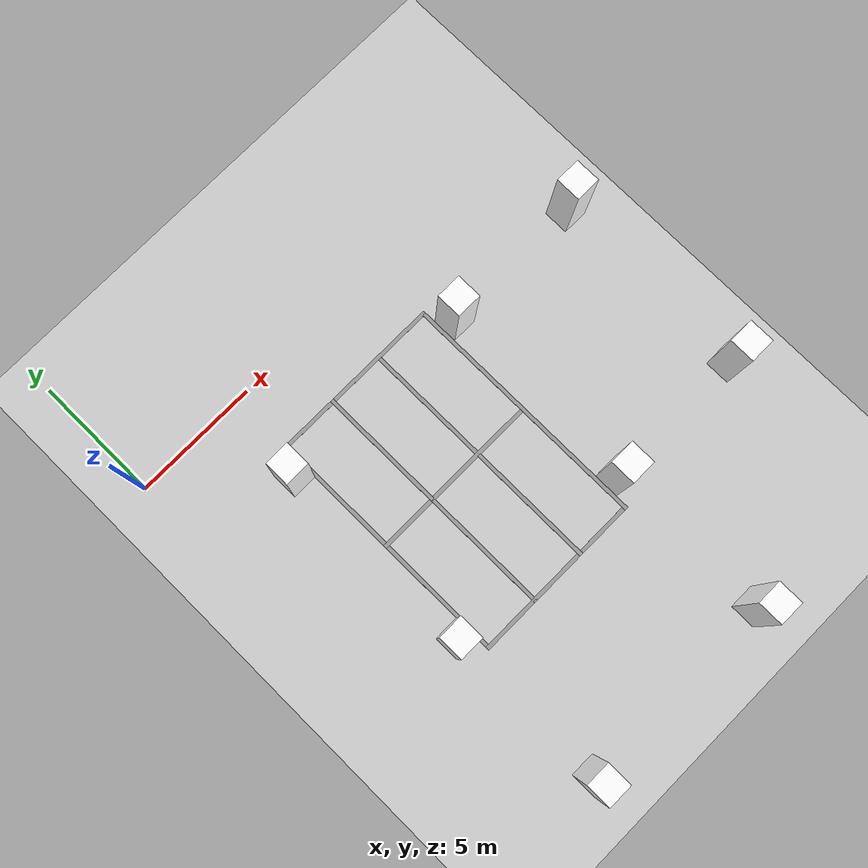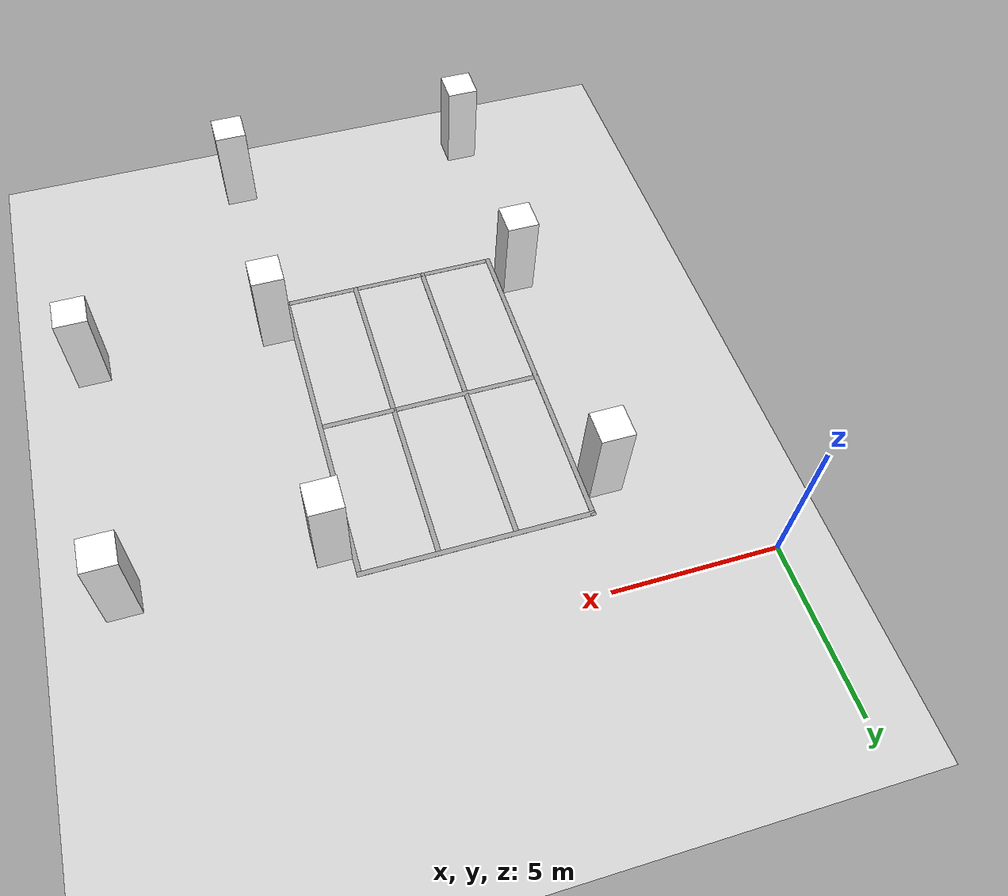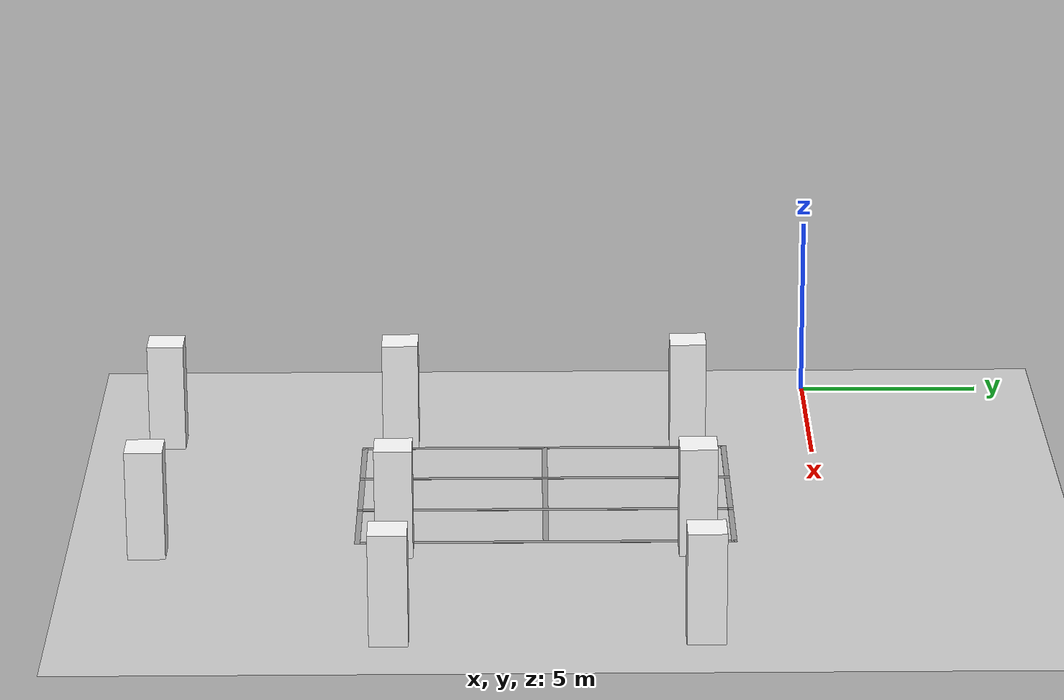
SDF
<sdf version="1.5">
 <world name="default">
  <model name="ground_plane">
   <static>true</static>
   <link name="ground_link">
    <collision name="ground_collision">
     <geometry><plane><normal>0 0 1</normal><size>100 100</size></plane></geometry>
     <surface><friction><ode><mu>100</mu><mu2>50</mu2></ode></friction></surface>
    </collision>
    <visual name="visual">
     <cast_shadows>false</cast_shadows>
     <geometry><plane><normal>0 0 1</normal><size>100 100</size></plane></geometry>
     <material>
      <script><uri>file://media/materials/scripts/gazebo.material</uri><name>Gazebo/Grey</name></script>
     </material>
    </visual>
   </link>
  </model>
  <model name="column9">
   <pose>12.075 -11.45 1.5 0 -0 0</pose>
   <link name="link">
    <collision name="collision"><geometry><box><size>1 1 3</size></box></geometry></collision>
    <visual name="visual">
     <geometry><box><size>1 1 3</size></box></geometry>
     <material>
      <script>
       <uri>model://materials/scripts</uri>
       <uri>model://materials/textures</uri>
       <name>column/parking</name>
      </script>
      <ambient>1 1 1 1</ambient>
      <diffuse>1 1 1 1</diffuse>
      <specular>0 0 0 1</specular>
      <emissive>1 1 1 0</emissive>
      <shader type="vertex"><normal_map>__default__</normal_map></shader>
     </material>
    </visual>
   </link>
   <static>1</static>
  </model>
  <model name="column10">
   <pose>4.025 -11.45 1.5 0 -0 0</pose>
   <link name="link">
    <collision name="collision"><geometry><box><size>1 1 3</size></box></geometry></collision>
    <visual name="visual">
     <geometry><box><size>1 1 3</size></box></geometry>
     <material>
      <script>
       <uri>model://materials/scripts</uri>
       <uri>model://materials/textures</uri>
       <name>column/parking</name>
      </script>
      <ambient>1 1 1 1</ambient>
      <diffuse>1 1 1 1</diffuse>
      <specular>0 0 0 1</specular>
      <emissive>1 1 1 0</emissive>
      <shader type="vertex"><normal_map>__default__</normal_map></shader>
     </material>
    </visual>
   </link>
   <static>1</static>
  </model>
  <model name="column13">
   <pose>12.075 -3.45 1.5 0 -0 0</pose>
   <link name="link">
    <collision name="collision"><geometry><box><size>1 1 3</size></box></geometry></collision>
    <visual name="visual">
     <geometry><box><size>1 1 3</size></box></geometry>
     <material>
      <script>
       <uri>model://materials/scripts</uri>
       <uri>model://materials/textures</uri>
       <name>column/parking</name>
      </script>
      <ambient>1 1 1 1</ambient>
      <diffuse>1 1 1 1</diffuse>
      <specular>0 0 0 1</specular>
      <emissive>1 1 1 0</emissive>
      <shader type="vertex"><normal_map>__default__</normal_map></shader>
     </material>
    </visual>
   </link>
   <static>1</static>
  </model>
  <model name="column14">
   <pose>4.025 -3.45 1.5 0 -0 0</pose>
   <link name="link">
    <collision name="collision"><geometry><box><size>1 1 3</size></box></geometry></collision>
    <visual name="visual">
     <geometry><box><size>1 1 3</size></box></geometry>
     <material>
      <script>
       <uri>model://materials/scripts</uri>
       <uri>model://materials/textures</uri>
       <name>column/parking</name>
      </script>
      <ambient>1 1 1 1</ambient>
      <diffuse>1 1 1 1</diffuse>
      <specular>0 0 0 1</specular>
      <emissive>1 1 1 0</emissive>
      <shader type="vertex"><normal_map>__default__</normal_map></shader>
     </material>
    </visual>
   </link>
   <static>1</static>
  </model>
  <model name="column_s13">
   <pose>4.025 -17.95 1.5 0 -0 0</pose>
   <link name="link">
    <collision name="collision"><geometry><box><size>1 1 3</size></box></geometry></collision>
    <visual name="visual">
     <geometry><box><size>1 1 3</size></box></geometry>
     <material>
      <script>
       <uri>model://materials/scripts</uri>
       <uri>model://materials/textures</uri>
       <name>column/parking</name>
      </script>
      <ambient>1 1 1 1</ambient>
      <diffuse>1 1 1 1</diffuse>
      <specular>0 0 0 1</specular>
      <emissive>1 1 1 0</emissive>
      <shader type="vertex"><normal_map>__default__</normal_map></shader>
     </material>
    </visual>
   </link>
   <static>1</static>
  </model>
  <model name="column_s14">
   <pose>12.075 -17.95 1.5 0 -0 0</pose>
   <link name="link">
    <collision name="collision"><geometry><box><size>1 1 3</size></box></geometry></collision>
    <visual name="visual">
     <geometry><box><size>1 1 3</size></box></geometry>
     <material>
      <script>
       <uri>model://materials/scripts</uri>
       <uri>model://materials/textures</uri>
       <name>column/parking</name>
      </script>
      <ambient>1 1 1 1</ambient>
      <diffuse>1 1 1 1</diffuse>
      <specular>0 0 0 1</specular>
      <emissive>1 1 1 0</emissive>
      <shader type="vertex"><normal_map>__default__</normal_map></shader>
     </material>
    </visual>
   </link>
   <static>1</static>
  </model>
  <model name="column_s15">
   <pose>17.875 -11.45 1.5 0 -0 0</pose>
   <link name="link">
    <collision name="collision"><geometry><box><size>1 1 3</size></box></geometry></collision>
    <visual name="visual">
     <geometry><box><size>1 1 3</size></box></geometry>
     <material>
      <script>
       <uri>model://materials/scripts</uri>
       <uri>model://materials/textures</uri>
       <name>column/parking</name>
      </script>
      <ambient>1 1 1 1</ambient>
      <diffuse>1 1 1 1</diffuse>
      <specular>0 0 0 1</specular>
      <emissive>1 1 1 0</emissive>
      <shader type="vertex"><normal_map>__default__</normal_map></shader>
     </material>
    </visual>
   </link>
   <static>1</static>
  </model>
  <model name="column_s16">
   <pose>17.875 -3.45 1.5 0 -0 0</pose>
   <link name="link">
    <collision name="collision"><geometry><box><size>1 1 3</size></box></geometry></collision>
    <visual name="visual">
     <geometry><box><size>1 1 3</size></box></geometry>
     <material>
      <script>
       <uri>model://materials/scripts</uri>
       <uri>model://materials/textures</uri>
       <name>column/parking</name>
      </script>
      <ambient>1 1 1 1</ambient>
      <diffuse>1 1 1 1</diffuse>
      <specular>0 0 0 1</specular>
      <emissive>1 1 1 0</emissive>
      <shader type="vertex"><normal_map>__default__</normal_map></shader>
     </material>
    </visual>
   </link>
   <static>1</static>
  </model>
  <model name="parking_line4">
   <pose>5.7875 -6.2625 0 0 -0 0</pose>
   <link name="Wall_41">
    <collision name="Wall_41_Collision">
     <geometry><box><size>7.05 0.15 0.005</size></box></geometry>
     <pose>0 0 0.0025 0 -0 0</pose>
    </collision>
    <visual name="Wall_41_Visual">
     <pose>0 0 0.0025 0 -0 0</pose>
     <geometry><box><size>7.05 0.15 0.005</size></box></geometry>
     <material>
      <script><uri>file://media/materials/scripts/gazebo.material</uri><name>Gazebo/Grey</name></script>
      <ambient>1 1 1 1</ambient>
     </material>
     <meta><layer>0</layer></meta>
    </visual>
    <pose>2.2625 3.8125 0 0 -0 0</pose>
   </link>
   <link name="Wall_42">
    <collision name="Wall_42_Collision">
     <geometry><box><size>10.15 0.15 0.005</size></box></geometry>
     <pose>0 0 0.0025 0 -0 0</pose>
    </collision>
    <visual name="Wall_42_Visual">
     <pose>0 0 0.0025 0 -0 0</pose>
     <geometry><box><size>10.15 0.15 0.005</size></box></geometry>
     <material>
      <script><uri>file://media/materials/scripts/gazebo.material</uri><name>Gazebo/Grey</name></script>
      <ambient>1 1 1 1</ambient>
     </material>
     <meta><layer>0</layer></meta>
    </visual>
    <pose>5.7125 -1.1875 0 0 -0 1.5708</pose>
   </link>
   <link name="Wall_43">
    <collision name="Wall_43_Collision">
     <geometry><box><size>7.05 0.15 0.005</size></box></geometry>
     <pose>0 0 0.0025 0 -0 0</pose>
    </collision>
    <visual name="Wall_43_Visual">
     <pose>0 0 0.0025 0 -0 0</pose>
     <geometry><box><size>7.05 0.15 0.005</size></box></geometry>
     <material>
      <script><uri>file://media/materials/scripts/gazebo.material</uri><name>Gazebo/Grey</name></script>
      <ambient>1 1 1 1</ambient>
     </material>
     <meta><layer>0</layer></meta>
    </visual>
    <pose>2.2625 -6.1875 0 0 -0 3.14159</pose>
   </link>
   <link name="Wall_44">
    <collision name="Wall_44_Collision">
     <geometry><box><size>10.15 0.15 0.005</size></box></geometry>
     <pose>0 0 0.0025 0 -0 0</pose>
    </collision>
    <visual name="Wall_44_Visual">
     <pose>0 0 0.0025 0 -0 0</pose>
     <geometry><box><size>10.15 0.15 0.005</size></box></geometry>
     <material>
      <script><uri>file://media/materials/scripts/gazebo.material</uri><name>Gazebo/Grey</name></script>
      <ambient>1 1 1 1</ambient>
     </material>
     <meta><layer>0</layer></meta>
    </visual>
    <pose>-1.1875 -1.1875 0 0 -0 -1.5708</pose>
   </link>
   <link name="Wall_45">
    <collision name="Wall_45_Collision">
     <geometry><box><size>7.05 0.15 0.005</size></box></geometry>
     <pose>0 0 0.0025 0 -0 0</pose>
    </collision>
    <visual name="Wall_45_Visual">
     <pose>0 0 0.0025 0 -0 0</pose>
     <geometry><box><size>7.05 0.15 0.005</size></box></geometry>
     <material>
      <script><uri>file://media/materials/scripts/gazebo.material</uri><name>Gazebo/Grey</name></script>
      <ambient>1 1 1 1</ambient>
     </material>
     <meta><layer>0</layer></meta>
    </visual>
    <pose>2.2625 -1.1875 0 0 -0 0</pose>
   </link>
   <link name="Wall_46">
    <collision name="Wall_46_Collision">
     <geometry><box><size>10.15 0.15 0.005</size></box></geometry>
     <pose>0 0 0.0025 0 -0 0</pose>
    </collision>
    <visual name="Wall_46_Visual">
     <pose>0 0 0.0025 0 -0 0</pose>
     <geometry><box><size>10.15 0.15 0.005</size></box></geometry>
     <material>
      <script><uri>file://media/materials/scripts/gazebo.material</uri><name>Gazebo/Grey</name></script>
      <ambient>1 1 1 1</ambient>
     </material>
     <meta><layer>0</layer></meta>
    </visual>
    <pose>3.4125 -1.1875 0 0 -0 1.5708</pose>
   </link>
   <link name="Wall_47">
    <collision name="Wall_47_Collision">
     <geometry><box><size>10.15 0.15 0.005</size></box></geometry>
     <pose>0 0 0.0025 0 -0 0</pose>
    </collision>
    <visual name="Wall_47_Visual">
     <pose>0 0 0.0025 0 -0 0</pose>
     <geometry><box><size>10.15 0.15 0.005</size></box></geometry>
     <material>
      <script><uri>file://media/materials/scripts/gazebo.material</uri><name>Gazebo/Grey</name></script>
      <ambient>1 1 1 1</ambient>
     </material>
     <meta><layer>0</layer></meta>
    </visual>
    <pose>1.1125 -1.1875 0 0 -0 1.5708</pose>
   </link>
   <static>1</static>
  </model>
 </world>
</sdf>
